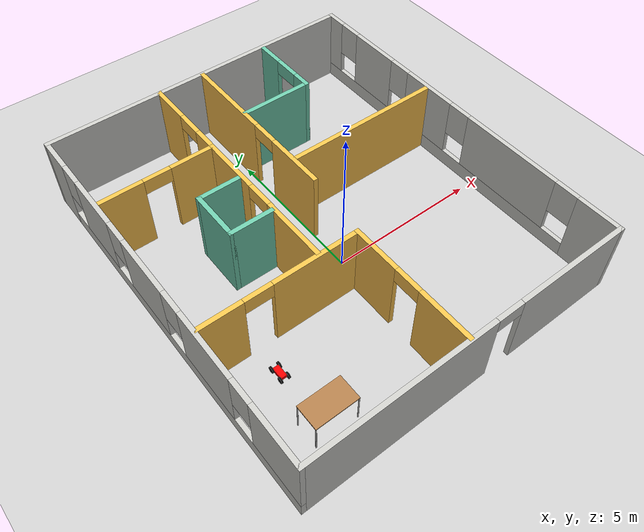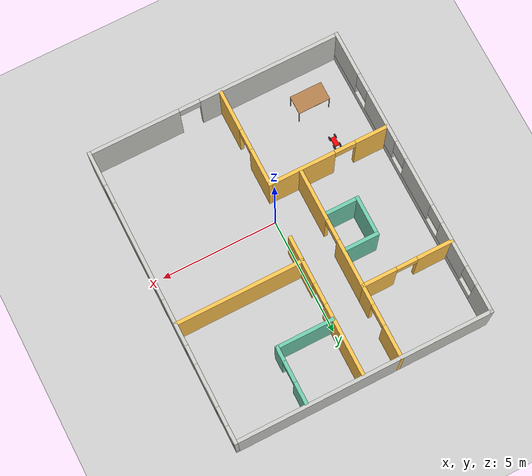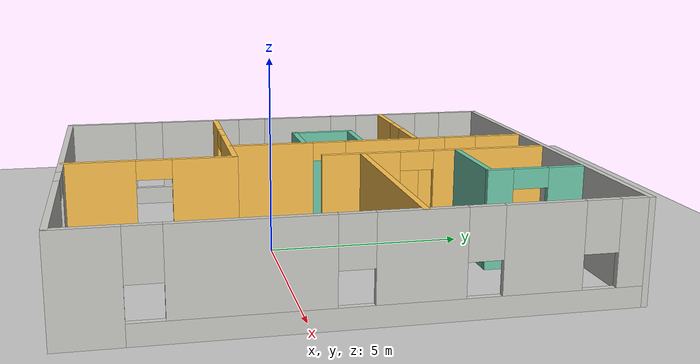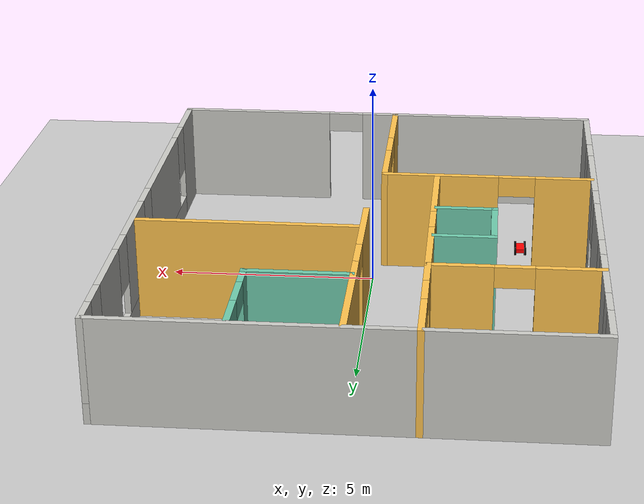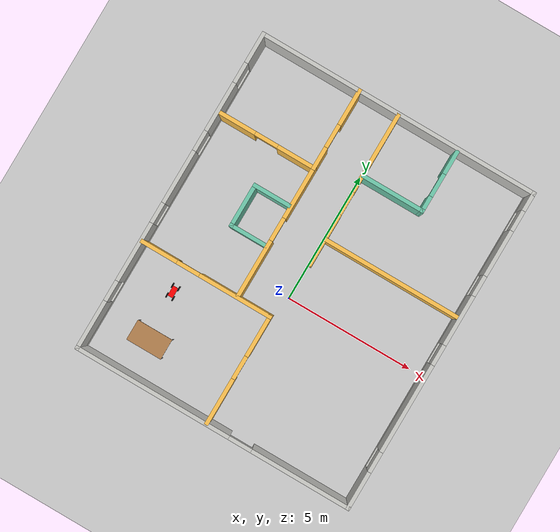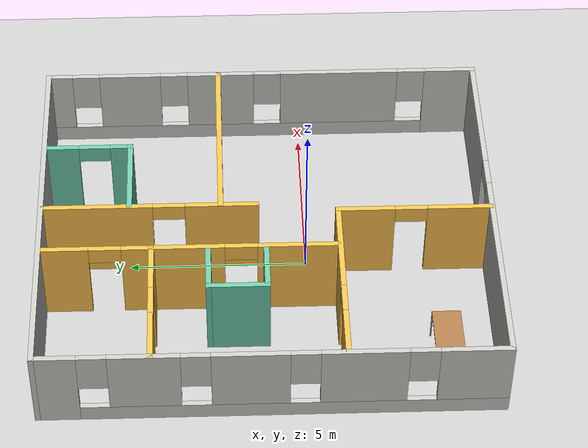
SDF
<sdf version="1.6">
 <world name="default">
  <model name="ground_plane">
   <static>1</static>
   <link name="link">
    <collision name="collision">
     <geometry><plane><normal>0 0 1</normal><size>100 100</size></plane></geometry>
     <surface><friction><ode><mu>100</mu><mu2>50</mu2></ode></friction></surface>
    </collision>
    <visual name="visual">
     <cast_shadows>0</cast_shadows>
     <geometry><plane><normal>0 0 1</normal><size>100 100</size></plane></geometry>
     <material>
      <script><uri>file://media/materials/scripts/gazebo.material</uri><name>Gazebo/Grey</name></script>
     </material>
    </visual>
   </link>
  </model>
  <model name="my_building">
   <pose>0.030865 1.12129 0 0 -0 0</pose>
   <link name="Wall_16">
    <pose>0 -6.30017 0 0 -0 0</pose>
    <visual name="Wall_16_Visual_0">
     <pose>-2.42617 0 1.25 0 -0 0</pose>
     <geometry><box><size>6.14766 0.15 2.5</size></box></geometry>
     <material>
      <script><uri>file://media/materials/scripts/gazebo.material</uri><name>Gazebo/CeilingTiled</name></script>
      <ambient>1 1 1 1</ambient>
     </material>
    </visual>
    <collision name="Wall_16_Collision_0">
     <geometry><box><size>6.14766 0.15 2.5</size></box></geometry>
     <pose>-2.42617 0 1.25 0 -0 0</pose>
    </collision>
    <visual name="Wall_16_Visual_1">
     <pose>3.52383 0 1.25 0 -0 0</pose>
     <geometry><box><size>3.95234 0.15 2.5</size></box></geometry>
     <material>
      <script><uri>file://media/materials/scripts/gazebo.material</uri><name>Gazebo/CeilingTiled</name></script>
      <ambient>1 1 1 1</ambient>
     </material>
    </visual>
    <collision name="Wall_16_Collision_1">
     <geometry><box><size>3.95234 0.15 2.5</size></box></geometry>
     <pose>3.52383 0 1.25 0 -0 0</pose>
    </collision>
    <visual name="Wall_16_Visual_2">
     <pose>1.09766 0 2.25 0 -0 0</pose>
     <geometry><box><size>0.9 0.15 0.5</size></box></geometry>
     <material>
      <script><uri>file://media/materials/scripts/gazebo.material</uri><name>Gazebo/CeilingTiled</name></script>
      <ambient>1 1 1 1</ambient>
     </material>
    </visual>
    <collision name="Wall_16_Collision_2">
     <geometry><box><size>0.9 0.15 0.5</size></box></geometry>
     <pose>1.09766 0 2.25 0 -0 0</pose>
    </collision>
   </link>
   <link name="Wall_17">
    <pose>5.425 -0.000173 0 0 -0 1.5708</pose>
    <visual name="Wall_17_Visual_0">
     <pose>-5.62049 0 1.25 0 -0 0</pose>
     <geometry><box><size>1.50902 0.15 2.5</size></box></geometry>
     <material>
      <script><uri>file://media/materials/scripts/gazebo.material</uri><name>Gazebo/CeilingTiled</name></script>
      <ambient>1 1 1 1</ambient>
     </material>
    </visual>
    <collision name="Wall_17_Collision_0">
     <geometry><box><size>1.50902 0.15 2.5</size></box></geometry>
     <pose>-5.62049 0 1.25 0 -0 0</pose>
    </collision>
    <visual name="Wall_17_Visual_1">
     <pose>0.754508 0 0.25 0 -0 0</pose>
     <geometry><box><size>11.241 0.15 0.5</size></box></geometry>
     <material>
      <script><uri>file://media/materials/scripts/gazebo.material</uri><name>Gazebo/CeilingTiled</name></script>
      <ambient>1 1 1 1</ambient>
     </material>
    </visual>
    <collision name="Wall_17_Collision_1">
     <geometry><box><size>11.241 0.15 0.5</size></box></geometry>
     <pose>0.754508 0 0.25 0 -0 0</pose>
    </collision>
    <visual name="Wall_17_Visual_2">
     <pose>-2.32184 0 1.5 0 -0 0</pose>
     <geometry><box><size>3.48829 0.15 2</size></box></geometry>
     <material>
      <script><uri>file://media/materials/scripts/gazebo.material</uri><name>Gazebo/CeilingTiled</name></script>
      <ambient>1 1 1 1</ambient>
     </material>
    </visual>
    <collision name="Wall_17_Collision_2">
     <geometry><box><size>3.48829 0.15 2</size></box></geometry>
     <pose>-2.32184 0 1.5 0 -0 0</pose>
    </collision>
    <visual name="Wall_17_Visual_3">
     <pose>1.20791 0 1.5 0 -0 0</pose>
     <geometry><box><size>1.97121 0.15 2</size></box></geometry>
     <material>
      <script><uri>file://media/materials/scripts/gazebo.material</uri><name>Gazebo/CeilingTiled</name></script>
      <ambient>1 1 1 1</ambient>
     </material>
    </visual>
    <collision name="Wall_17_Collision_3">
     <geometry><box><size>1.97121 0.15 2</size></box></geometry>
     <pose>1.20791 0 1.5 0 -0 0</pose>
    </collision>
    <visual name="Wall_17_Visual_4">
     <pose>3.89821 0 1.5 0 -0 0</pose>
     <geometry><box><size>1.80939 0.15 2</size></box></geometry>
     <material>
      <script><uri>file://media/materials/scripts/gazebo.material</uri><name>Gazebo/CeilingTiled</name></script>
      <ambient>1 1 1 1</ambient>
     </material>
    </visual>
    <collision name="Wall_17_Collision_4">
     <geometry><box><size>1.80939 0.15 2</size></box></geometry>
     <pose>3.89821 0 1.5 0 -0 0</pose>
    </collision>
    <visual name="Wall_17_Visual_5">
     <pose>5.98895 0 1.5 0 -0 0</pose>
     <geometry><box><size>0.772101 0.15 2</size></box></geometry>
     <material>
      <script><uri>file://media/materials/scripts/gazebo.material</uri><name>Gazebo/CeilingTiled</name></script>
      <ambient>1 1 1 1</ambient>
     </material>
    </visual>
    <collision name="Wall_17_Collision_5">
     <geometry><box><size>0.772101 0.15 2</size></box></geometry>
     <pose>5.98895 0 1.5 0 -0 0</pose>
    </collision>
    <visual name="Wall_17_Visual_6">
     <pose>-4.46598 0 1.9 0 -0 0</pose>
     <geometry><box><size>0.8 0.15 1.2</size></box></geometry>
     <material>
      <script><uri>file://media/materials/scripts/gazebo.material</uri><name>Gazebo/CeilingTiled</name></script>
      <ambient>1 1 1 1</ambient>
     </material>
    </visual>
    <collision name="Wall_17_Collision_6">
     <geometry><box><size>0.8 0.15 1.2</size></box></geometry>
     <pose>-4.46598 0 1.9 0 -0 0</pose>
    </collision>
    <visual name="Wall_17_Visual_7">
     <pose>-0.177693 0 1.9 0 -0 0</pose>
     <geometry><box><size>0.8 0.15 1.2</size></box></geometry>
     <material>
      <script><uri>file://media/materials/scripts/gazebo.material</uri><name>Gazebo/CeilingTiled</name></script>
      <ambient>1 1 1 1</ambient>
     </material>
    </visual>
    <collision name="Wall_17_Collision_7">
     <geometry><box><size>0.8 0.15 1.2</size></box></geometry>
     <pose>-0.177693 0 1.9 0 -0 0</pose>
    </collision>
    <visual name="Wall_17_Visual_8">
     <pose>2.59351 0 1.9 0 -0 0</pose>
     <geometry><box><size>0.8 0.15 1.2</size></box></geometry>
     <material>
      <script><uri>file://media/materials/scripts/gazebo.material</uri><name>Gazebo/CeilingTiled</name></script>
      <ambient>1 1 1 1</ambient>
     </material>
    </visual>
    <collision name="Wall_17_Collision_8">
     <geometry><box><size>0.8 0.15 1.2</size></box></geometry>
     <pose>2.59351 0 1.9 0 -0 0</pose>
    </collision>
    <visual name="Wall_17_Visual_9">
     <pose>5.2029 0 1.9 0 -0 0</pose>
     <geometry><box><size>0.8 0.15 1.2</size></box></geometry>
     <material>
      <script><uri>file://media/materials/scripts/gazebo.material</uri><name>Gazebo/CeilingTiled</name></script>
      <ambient>1 1 1 1</ambient>
     </material>
    </visual>
    <collision name="Wall_17_Collision_9">
     <geometry><box><size>0.8 0.15 1.2</size></box></geometry>
     <pose>5.2029 0 1.9 0 -0 0</pose>
    </collision>
   </link>
   <link name="Wall_19">
    <collision name="Wall_19_Collision">
     <geometry><box><size>11 0.15 2.5</size></box></geometry>
     <pose>0 0 1.25 0 -0 0</pose>
    </collision>
    <visual name="Wall_19_Visual">
     <pose>0 0 1.25 0 -0 0</pose>
     <geometry><box><size>11 0.15 2.5</size></box></geometry>
     <material>
      <script><uri>file://media/materials/scripts/gazebo.material</uri><name>Gazebo/CeilingTiled</name></script>
      <ambient>1 1 1 1</ambient>
     </material>
    </visual>
    <pose>0 6.29983 0 0 -0 3.14159</pose>
   </link>
   <link name="Wall_20">
    <pose>-5.425 -0.000173 0 0 0 -1.5708</pose>
    <visual name="Wall_20_Visual_0">
     <pose>-5.75633 0 1.25 0 -0 0</pose>
     <geometry><box><size>1.23734 0.15 2.5</size></box></geometry>
     <material>
      <script><uri>file://media/materials/scripts/gazebo.material</uri><name>Gazebo/CeilingTiled</name></script>
      <ambient>1 1 1 1</ambient>
     </material>
    </visual>
    <collision name="Wall_20_Collision_0">
     <geometry><box><size>1.23734 0.15 2.5</size></box></geometry>
     <pose>-5.75633 0 1.25 0 -0 0</pose>
    </collision>
    <visual name="Wall_20_Visual_1">
     <pose>0.61867 0 0.25 0 -0 0</pose>
     <geometry><box><size>11.5127 0.15 0.5</size></box></geometry>
     <material>
      <script><uri>file://media/materials/scripts/gazebo.material</uri><name>Gazebo/CeilingTiled</name></script>
      <ambient>1 1 1 1</ambient>
     </material>
    </visual>
    <collision name="Wall_20_Collision_1">
     <geometry><box><size>11.5127 0.15 0.5</size></box></geometry>
     <pose>0.61867 0 0.25 0 -0 0</pose>
    </collision>
    <visual name="Wall_20_Visual_2">
     <pose>-3.37228 0 1.5 0 -0 0</pose>
     <geometry><box><size>1.93075 0.15 2</size></box></geometry>
     <material>
      <script><uri>file://media/materials/scripts/gazebo.material</uri><name>Gazebo/CeilingTiled</name></script>
      <ambient>1 1 1 1</ambient>
     </material>
    </visual>
    <collision name="Wall_20_Collision_2">
     <geometry><box><size>1.93075 0.15 2</size></box></geometry>
     <pose>-3.37228 0 1.5 0 -0 0</pose>
    </collision>
    <visual name="Wall_20_Visual_3">
     <pose>-0.560621 0 1.5 0 -0 0</pose>
     <geometry><box><size>2.09257 0.15 2</size></box></geometry>
     <material>
      <script><uri>file://media/materials/scripts/gazebo.material</uri><name>Gazebo/CeilingTiled</name></script>
      <ambient>1 1 1 1</ambient>
     </material>
    </visual>
    <collision name="Wall_20_Collision_3">
     <geometry><box><size>2.09257 0.15 2</size></box></geometry>
     <pose>-0.560621 0 1.5 0 -0 0</pose>
    </collision>
    <visual name="Wall_20_Visual_4">
     <pose>2.45016 0 1.5 0 -0 0</pose>
     <geometry><box><size>2.32899 0.15 2</size></box></geometry>
     <material>
      <script><uri>file://media/materials/scripts/gazebo.material</uri><name>Gazebo/CeilingTiled</name></script>
      <ambient>1 1 1 1</ambient>
     </material>
    </visual>
    <collision name="Wall_20_Collision_4">
     <geometry><box><size>2.32899 0.15 2</size></box></geometry>
     <pose>2.45016 0 1.5 0 -0 0</pose>
    </collision>
    <visual name="Wall_20_Visual_5">
     <pose>5.39483 0 1.5 0 -0 0</pose>
     <geometry><box><size>1.96034 0.15 2</size></box></geometry>
     <material>
      <script><uri>file://media/materials/scripts/gazebo.material</uri><name>Gazebo/CeilingTiled</name></script>
      <ambient>1 1 1 1</ambient>
     </material>
    </visual>
    <collision name="Wall_20_Collision_5">
     <geometry><box><size>1.96034 0.15 2</size></box></geometry>
     <pose>5.39483 0 1.5 0 -0 0</pose>
    </collision>
    <visual name="Wall_20_Visual_6">
     <pose>-4.73766 0 1.9 0 -0 0</pose>
     <geometry><box><size>0.8 0.15 1.2</size></box></geometry>
     <material>
      <script><uri>file://media/materials/scripts/gazebo.material</uri><name>Gazebo/CeilingTiled</name></script>
      <ambient>1 1 1 1</ambient>
     </material>
    </visual>
    <collision name="Wall_20_Collision_6">
     <geometry><box><size>0.8 0.15 1.2</size></box></geometry>
     <pose>-4.73766 0 1.9 0 -0 0</pose>
    </collision>
    <visual name="Wall_20_Visual_7">
     <pose>-2.00691 0 1.9 0 -0 0</pose>
     <geometry><box><size>0.8 0.15 1.2</size></box></geometry>
     <material>
      <script><uri>file://media/materials/scripts/gazebo.material</uri><name>Gazebo/CeilingTiled</name></script>
      <ambient>1 1 1 1</ambient>
     </material>
    </visual>
    <collision name="Wall_20_Collision_7">
     <geometry><box><size>0.8 0.15 1.2</size></box></geometry>
     <pose>-2.00691 0 1.9 0 -0 0</pose>
    </collision>
    <visual name="Wall_20_Visual_8">
     <pose>0.885666 0 1.9 0 -0 0</pose>
     <geometry><box><size>0.8 0.15 1.2</size></box></geometry>
     <material>
      <script><uri>file://media/materials/scripts/gazebo.material</uri><name>Gazebo/CeilingTiled</name></script>
      <ambient>1 1 1 1</ambient>
     </material>
    </visual>
    <collision name="Wall_20_Collision_8">
     <geometry><box><size>0.8 0.15 1.2</size></box></geometry>
     <pose>0.885666 0 1.9 0 -0 0</pose>
    </collision>
    <visual name="Wall_20_Visual_9">
     <pose>4.01466 0 1.9 0 -0 0</pose>
     <geometry><box><size>0.8 0.15 1.2</size></box></geometry>
     <material>
      <script><uri>file://media/materials/scripts/gazebo.material</uri><name>Gazebo/CeilingTiled</name></script>
      <ambient>1 1 1 1</ambient>
     </material>
    </visual>
    <collision name="Wall_20_Collision_9">
     <geometry><box><size>0.8 0.15 1.2</size></box></geometry>
     <pose>4.01466 0 1.9 0 -0 0</pose>
    </collision>
   </link>
   <link name="Wall_22">
    <pose>-2.805 -1.99837 0 0 -0 0</pose>
    <visual name="Wall_22_Visual_0">
     <pose>-1.90225 0 1.25 0 -0 0</pose>
     <geometry><box><size>1.4455 0.15 2.5</size></box></geometry>
     <material>
      <script><uri>file://media/materials/scripts/gazebo.material</uri><name>Gazebo/Grey</name></script>
      <ambient>1 0.764706 0.305882 1</ambient>
     </material>
    </visual>
    <collision name="Wall_22_Collision_0">
     <geometry><box><size>1.4455 0.15 2.5</size></box></geometry>
     <pose>-1.90225 0 1.25 0 -0 0</pose>
    </collision>
    <visual name="Wall_22_Visual_1">
     <pose>1.17275 0 1.25 0 -0 0</pose>
     <geometry><box><size>2.9045 0.15 2.5</size></box></geometry>
     <material>
      <script><uri>file://media/materials/scripts/gazebo.material</uri><name>Gazebo/Grey</name></script>
      <ambient>1 0.764706 0.305882 1</ambient>
     </material>
    </visual>
    <collision name="Wall_22_Collision_1">
     <geometry><box><size>2.9045 0.15 2.5</size></box></geometry>
     <pose>1.17275 0 1.25 0 -0 0</pose>
    </collision>
    <visual name="Wall_22_Visual_2">
     <pose>-0.729499 0 2.25 0 -0 0</pose>
     <geometry><box><size>0.9 0.15 0.5</size></box></geometry>
     <material>
      <script><uri>file://media/materials/scripts/gazebo.material</uri><name>Gazebo/Grey</name></script>
      <ambient>1 0.764706 0.305882 1</ambient>
     </material>
    </visual>
    <collision name="Wall_22_Collision_2">
     <geometry><box><size>0.9 0.15 0.5</size></box></geometry>
     <pose>-0.729499 0 2.25 0 -0 0</pose>
    </collision>
   </link>
   <link name="Wall_23">
    <pose>-0.255 -4.12337 0 0 0 -1.5708</pose>
    <visual name="Wall_23_Visual_0">
     <pose>-1.366 0 1.25 0 -0 0</pose>
     <geometry><box><size>1.66801 0.15 2.5</size></box></geometry>
     <material>
      <script><uri>file://media/materials/scripts/gazebo.material</uri><name>Gazebo/Grey</name></script>
      <ambient>1 0.764706 0.305882 1</ambient>
     </material>
    </visual>
    <collision name="Wall_23_Collision_0">
     <geometry><box><size>1.66801 0.15 2.5</size></box></geometry>
     <pose>-1.366 0 1.25 0 -0 0</pose>
    </collision>
    <visual name="Wall_23_Visual_1">
     <pose>1.284 0 1.25 0 -0 0</pose>
     <geometry><box><size>1.83199 0.15 2.5</size></box></geometry>
     <material>
      <script><uri>file://media/materials/scripts/gazebo.material</uri><name>Gazebo/Grey</name></script>
      <ambient>1 0.764706 0.305882 1</ambient>
     </material>
    </visual>
    <collision name="Wall_23_Collision_1">
     <geometry><box><size>1.83199 0.15 2.5</size></box></geometry>
     <pose>1.284 0 1.25 0 -0 0</pose>
    </collision>
    <visual name="Wall_23_Visual_2">
     <pose>-0.081993 0 2.25 0 -0 0</pose>
     <geometry><box><size>0.9 0.15 0.5</size></box></geometry>
     <material>
      <script><uri>file://media/materials/scripts/gazebo.material</uri><name>Gazebo/Grey</name></script>
      <ambient>1 0.764706 0.305882 1</ambient>
     </material>
    </visual>
    <collision name="Wall_23_Collision_2">
     <geometry><box><size>0.9 0.15 0.5</size></box></geometry>
     <pose>-0.081993 0 2.25 0 -0 0</pose>
    </collision>
   </link>
   <link name="Wall_25">
    <pose>-3.49068 3.20017 0 0 -0 0</pose>
    <visual name="Wall_25_Visual_0">
     <pose>-1.21338 0 1.25 0 -0 0</pose>
     <geometry><box><size>1.57325 0.15 2.5</size></box></geometry>
     <material>
      <script><uri>file://media/materials/scripts/gazebo.material</uri><name>Gazebo/Grey</name></script>
      <ambient>1 0.764706 0.305882 1</ambient>
     </material>
    </visual>
    <collision name="Wall_25_Collision_0">
     <geometry><box><size>1.57325 0.15 2.5</size></box></geometry>
     <pose>-1.21338 0 1.25 0 -0 0</pose>
    </collision>
    <visual name="Wall_25_Visual_1">
     <pose>1.23662 0 1.25 0 -0 0</pose>
     <geometry><box><size>1.52675 0.15 2.5</size></box></geometry>
     <material>
      <script><uri>file://media/materials/scripts/gazebo.material</uri><name>Gazebo/Grey</name></script>
      <ambient>1 0.764706 0.305882 1</ambient>
     </material>
    </visual>
    <collision name="Wall_25_Collision_1">
     <geometry><box><size>1.52675 0.15 2.5</size></box></geometry>
     <pose>1.23662 0 1.25 0 -0 0</pose>
    </collision>
    <visual name="Wall_25_Visual_2">
     <pose>0.023247 0 2.25 0 -0 0</pose>
     <geometry><box><size>0.9 0.15 0.5</size></box></geometry>
     <material>
      <script><uri>file://media/materials/scripts/gazebo.material</uri><name>Gazebo/Grey</name></script>
      <ambient>1 0.764706 0.305882 1</ambient>
     </material>
    </visual>
    <collision name="Wall_25_Collision_2">
     <geometry><box><size>0.9 0.15 0.5</size></box></geometry>
     <pose>0.023247 0 2.25 0 -0 0</pose>
    </collision>
   </link>
   <link name="Wall_26">
    <pose>-1.56568 0.650174 0 0 0 -1.5708</pose>
    <visual name="Wall_26_Visual_0">
     <pose>-1.57861 0 1.25 0 -0 0</pose>
     <geometry><box><size>2.09279 0.15 2.5</size></box></geometry>
     <material>
      <script><uri>file://media/materials/scripts/gazebo.material</uri><name>Gazebo/Grey</name></script>
      <ambient>1 0.764706 0.305882 1</ambient>
     </material>
    </visual>
    <collision name="Wall_26_Collision_0">
     <geometry><box><size>2.09279 0.15 2.5</size></box></geometry>
     <pose>-1.57861 0 1.25 0 -0 0</pose>
    </collision>
    <visual name="Wall_26_Visual_1">
     <pose>1.49639 0 1.25 0 -0 0</pose>
     <geometry><box><size>2.25721 0.15 2.5</size></box></geometry>
     <material>
      <script><uri>file://media/materials/scripts/gazebo.material</uri><name>Gazebo/Grey</name></script>
      <ambient>1 0.764706 0.305882 1</ambient>
     </material>
    </visual>
    <collision name="Wall_26_Collision_1">
     <geometry><box><size>2.25721 0.15 2.5</size></box></geometry>
     <pose>1.49639 0 1.25 0 -0 0</pose>
    </collision>
    <visual name="Wall_26_Visual_2">
     <pose>-0.08221 0 2.25 0 -0 0</pose>
     <geometry><box><size>0.9 0.15 0.5</size></box></geometry>
     <material>
      <script><uri>file://media/materials/scripts/gazebo.material</uri><name>Gazebo/Grey</name></script>
      <ambient>1 0.764706 0.305882 1</ambient>
     </material>
    </visual>
    <collision name="Wall_26_Collision_2">
     <geometry><box><size>0.9 0.15 0.5</size></box></geometry>
     <pose>-0.08221 0 2.25 0 -0 0</pose>
    </collision>
   </link>
   <link name="Wall_28">
    <pose>-1.56568 4.75017 0 0 -0 1.5708</pose>
    <visual name="Wall_28_Visual_0">
     <pose>-1.17532 0 1.25 0 -0 0</pose>
     <geometry><box><size>0.89935 0.15 2.5</size></box></geometry>
     <material>
      <script><uri>file://media/materials/scripts/gazebo.material</uri><name>Gazebo/Grey</name></script>
      <ambient>1 0.764706 0.305882 1</ambient>
     </material>
    </visual>
    <collision name="Wall_28_Collision_0">
     <geometry><box><size>0.89935 0.15 2.5</size></box></geometry>
     <pose>-1.17532 0 1.25 0 -0 0</pose>
    </collision>
    <visual name="Wall_28_Visual_1">
     <pose>0.899675 0 1.25 0 -0 0</pose>
     <geometry><box><size>1.45065 0.15 2.5</size></box></geometry>
     <material>
      <script><uri>file://media/materials/scripts/gazebo.material</uri><name>Gazebo/Grey</name></script>
      <ambient>1 0.764706 0.305882 1</ambient>
     </material>
    </visual>
    <collision name="Wall_28_Collision_1">
     <geometry><box><size>1.45065 0.15 2.5</size></box></geometry>
     <pose>0.899675 0 1.25 0 -0 0</pose>
    </collision>
    <visual name="Wall_28_Visual_2">
     <pose>-0.27565 0 2.25 0 -0 0</pose>
     <geometry><box><size>0.9 0.15 0.5</size></box></geometry>
     <material>
      <script><uri>file://media/materials/scripts/gazebo.material</uri><name>Gazebo/Grey</name></script>
      <ambient>1 0.764706 0.305882 1</ambient>
     </material>
    </visual>
    <collision name="Wall_28_Collision_2">
     <geometry><box><size>0.9 0.15 0.5</size></box></geometry>
     <pose>-0.27565 0 2.25 0 -0 0</pose>
    </collision>
   </link>
   <link name="Wall_30">
    <collision name="Wall_30_Collision">
     <geometry><box><size>1.5 0.15 2.5</size></box></geometry>
     <pose>0 0 1.25 0 -0 0</pose>
    </collision>
    <visual name="Wall_30_Visual">
     <pose>0 0 1.25 0 -0 0</pose>
     <geometry><box><size>1.5 0.15 2.5</size></box></geometry>
     <material>
      <script><uri>file://media/materials/scripts/gazebo.material</uri><name>Gazebo/Grey</name></script>
      <ambient>0.435294 0.796078 0.67451 1</ambient>
     </material>
    </visual>
    <pose>-2.32831 1.64264 0 0 -0 3.14159</pose>
   </link>
   <link name="Wall_31">
    <collision name="Wall_31_Collision">
     <geometry><box><size>1.75 0.15 2.5</size></box></geometry>
     <pose>0 0 1.25 0 -0 0</pose>
    </collision>
    <visual name="Wall_31_Visual">
     <pose>0 0 1.25 0 -0 0</pose>
     <geometry><box><size>1.75 0.15 2.5</size></box></geometry>
     <material>
      <script><uri>file://media/materials/scripts/gazebo.material</uri><name>Gazebo/Grey</name></script>
      <ambient>0.435294 0.796078 0.67451 1</ambient>
     </material>
    </visual>
    <pose>-3.00331 0.842635 0 0 0 -1.5708</pose>
   </link>
   <link name="Wall_32">
    <collision name="Wall_32_Collision">
     <geometry><box><size>1.5 0.15 2.5</size></box></geometry>
     <pose>0 0 1.25 0 -0 0</pose>
    </collision>
    <visual name="Wall_32_Visual">
     <pose>0 0 1.25 0 -0 0</pose>
     <geometry><box><size>1.5 0.15 2.5</size></box></geometry>
     <material>
      <script><uri>file://media/materials/scripts/gazebo.material</uri><name>Gazebo/Grey</name></script>
      <ambient>0.435294 0.796078 0.67451 1</ambient>
     </material>
    </visual>
    <pose>-2.32831 0.042635 0 0 -0 0</pose>
   </link>
   <link name="Wall_37">
    <collision name="Wall_37_Collision">
     <geometry><box><size>5.5 0.15 2.5</size></box></geometry>
     <pose>0 0 1.25 0 -0 0</pose>
    </collision>
    <visual name="Wall_37_Visual">
     <pose>0 0 1.25 0 -0 0</pose>
     <geometry><box><size>5.5 0.15 2.5</size></box></geometry>
     <material>
      <script><uri>file://media/materials/scripts/gazebo.material</uri><name>Gazebo/Grey</name></script>
      <ambient>1 0.764706 0.305882 1</ambient>
     </material>
    </visual>
    <pose>2.72082 1.27853 0 0 -0 0</pose>
   </link>
   <link name="Wall_39">
    <collision name="Wall_39_Collision">
     <geometry><box><size>2.5 0.15 2.5</size></box></geometry>
     <pose>0 0 1.25 0 -0 0</pose>
    </collision>
    <visual name="Wall_39_Visual">
     <pose>0 0 1.25 0 -0 0</pose>
     <geometry><box><size>2.5 0.15 2.5</size></box></geometry>
     <material>
      <script><uri>file://media/materials/scripts/gazebo.material</uri><name>Gazebo/Grey</name></script>
      <ambient>0.435294 0.796078 0.67451 1</ambient>
     </material>
    </visual>
    <pose>1.24105 3.82724 0 0 -0 0</pose>
   </link>
   <link name="Wall_40">
    <pose>2.41605 5.00224 0 0 -0 1.5708</pose>
    <visual name="Wall_40_Visual_0">
     <pose>-0.921692 0 1.25 0 -0 0</pose>
     <geometry><box><size>0.656617 0.15 2.5</size></box></geometry>
     <material>
      <script><uri>file://media/materials/scripts/gazebo.material</uri><name>Gazebo/Grey</name></script>
      <ambient>0.435294 0.796078 0.67451 1</ambient>
     </material>
    </visual>
    <collision name="Wall_40_Collision_0">
     <geometry><box><size>0.656617 0.15 2.5</size></box></geometry>
     <pose>-0.921692 0 1.25 0 -0 0</pose>
    </collision>
    <visual name="Wall_40_Visual_1">
     <pose>0.778308 0 1.25 0 -0 0</pose>
     <geometry><box><size>0.943383 0.15 2.5</size></box></geometry>
     <material>
      <script><uri>file://media/materials/scripts/gazebo.material</uri><name>Gazebo/Grey</name></script>
      <ambient>0.435294 0.796078 0.67451 1</ambient>
     </material>
    </visual>
    <collision name="Wall_40_Collision_1">
     <geometry><box><size>0.943383 0.15 2.5</size></box></geometry>
     <pose>0.778308 0 1.25 0 -0 0</pose>
    </collision>
    <visual name="Wall_40_Visual_2">
     <pose>-0.143383 0 2.25 0 -0 0</pose>
     <geometry><box><size>0.9 0.15 0.5</size></box></geometry>
     <material>
      <script><uri>file://media/materials/scripts/gazebo.material</uri><name>Gazebo/Grey</name></script>
      <ambient>0.435294 0.796078 0.67451 1</ambient>
     </material>
    </visual>
    <collision name="Wall_40_Collision_2">
     <geometry><box><size>0.9 0.15 0.5</size></box></geometry>
     <pose>-0.143383 0 2.25 0 -0 0</pose>
    </collision>
   </link>
   <link name="Wall_42">
    <pose>0.021649 3.25468 0 0 -0 1.5708</pose>
    <visual name="Wall_42_Visual_0">
     <pose>-2.01275 0 1.25 0 -0 0</pose>
     <geometry><box><size>2.0745 0.15 2.5</size></box></geometry>
     <material>
      <script><uri>file://media/materials/scripts/gazebo.material</uri><name>Gazebo/Grey</name></script>
      <ambient>1 0.764706 0.305882 1</ambient>
     </material>
    </visual>
    <collision name="Wall_42_Collision_0">
     <geometry><box><size>2.0745 0.15 2.5</size></box></geometry>
     <pose>-2.01275 0 1.25 0 -0 0</pose>
    </collision>
    <visual name="Wall_42_Visual_1">
     <pose>1.48725 0 1.25 0 -0 0</pose>
     <geometry><box><size>3.1255 0.15 2.5</size></box></geometry>
     <material>
      <script><uri>file://media/materials/scripts/gazebo.material</uri><name>Gazebo/Grey</name></script>
      <ambient>1 0.764706 0.305882 1</ambient>
     </material>
    </visual>
    <collision name="Wall_42_Collision_1">
     <geometry><box><size>3.1255 0.15 2.5</size></box></geometry>
     <pose>1.48725 0 1.25 0 -0 0</pose>
    </collision>
    <visual name="Wall_42_Visual_2">
     <pose>-0.5255 0 2.25 0 -0 0</pose>
     <geometry><box><size>0.9 0.15 0.5</size></box></geometry>
     <material>
      <script><uri>file://media/materials/scripts/gazebo.material</uri><name>Gazebo/Grey</name></script>
      <ambient>1 0.764706 0.305882 1</ambient>
     </material>
    </visual>
    <collision name="Wall_42_Collision_2">
     <geometry><box><size>0.9 0.15 0.5</size></box></geometry>
     <pose>-0.5255 0 2.25 0 -0 0</pose>
    </collision>
   </link>
   <static>1</static>
  </model>
  <model name="table">
   <static>0</static>
   <link name="link">
    <collision name="surface">
     <pose>0 0 1 0 -0 0</pose>
     <geometry><box><size>1.5 0.8 0.03</size></box></geometry>
     <surface><friction><ode><mu>0.6</mu><mu2>0.6</mu2></ode></friction></surface>
    </collision>
    <visual name="visual1">
     <pose>0 0 1 0 -0 0</pose>
     <geometry><box><size>1.4 0.8 0.04</size></box></geometry>
     <material>
      <script><uri>file://media/materials/scripts/gazebo.material</uri><name>Gazebo/Wood</name></script>
     </material>
    </visual>
    <collision name="front_left_leg">
     <pose>0.68 0.38 0.5 0 -0 0</pose>
     <geometry><cylinder><radius>0.02</radius><length>1</length></cylinder></geometry>
    </collision>
    <visual name="front_left_leg">
     <pose>0.68 0.38 0.5 0 -0 0</pose>
     <geometry><cylinder><radius>0.02</radius><length>1</length></cylinder></geometry>
     <material>
      <script><uri>file://media/materials/scripts/gazebo.material</uri><name>Gazebo/Grey</name></script>
     </material>
    </visual>
    <collision name="front_right_leg">
     <pose>0.68 -0.38 0.5 0 -0 0</pose>
     <geometry><cylinder><radius>0.02</radius><length>1</length></cylinder></geometry>
    </collision>
    <visual name="front_right_leg">
     <pose>0.68 -0.38 0.5 0 -0 0</pose>
     <geometry><cylinder><radius>0.02</radius><length>1</length></cylinder></geometry>
     <material>
      <script><uri>file://media/materials/scripts/gazebo.material</uri><name>Gazebo/Grey</name></script>
     </material>
    </visual>
    <collision name="back_right_leg">
     <pose>-0.68 -0.38 0.5 0 -0 0</pose>
     <geometry><cylinder><radius>0.02</radius><length>1</length></cylinder></geometry>
    </collision>
    <visual name="back_right_leg">
     <pose>-0.68 -0.38 0.5 0 -0 0</pose>
     <geometry><cylinder><radius>0.02</radius><length>1</length></cylinder></geometry>
     <material>
      <script><uri>file://media/materials/scripts/gazebo.material</uri><name>Gazebo/Grey</name></script>
     </material>
    </visual>
    <collision name="back_left_leg">
     <pose>-0.68 0.38 0.5 0 -0 0</pose>
     <geometry><cylinder><radius>0.02</radius><length>1</length></cylinder></geometry>
    </collision>
    <visual name="back_left_leg">
     <pose>-0.68 0.38 0.5 0 -0 0</pose>
     <geometry><cylinder><radius>0.02</radius><length>1</length></cylinder></geometry>
     <material>
      <script><uri>file://media/materials/scripts/gazebo.material</uri><name>Gazebo/Grey</name></script>
     </material>
    </visual>
    <inertial>
     <inertia><ixx>1</ixx><ixy>0</ixy><ixz>0</ixz><iyy>1</iyy><iyz>0</iyz><izz>1</izz></inertia>
     <mass>1</mass>
    </inertial>
   </link>
   <pose>-3.48639 -3.75617 -1e-06 1e-06 -0 0</pose>
  </model>
  <model name="my_robot_clone">
   <link name="link_0">
    <inertial>
     <mass>1</mass>
     <inertia>
      <ixx>0.166667</ixx>
      <ixy>0</ixy>
      <ixz>0</ixz>
      <iyy>0.166667</iyy>
      <iyz>0</iyz>
      <izz>0.166667</izz>
     </inertia>
    </inertial>
    <visual name="visual">
     <geometry><box><size>0.4 0.2 0.1</size></box></geometry>
     <material>
      <ambient>1 0 0 1</ambient>
      <diffuse>1 0 0 1</diffuse>
      <specular>0.1 0.1 0.1 1</specular>
      <emissive>0 0 0 0</emissive>
     </material>
    </visual>
    <collision name="collision">
     <geometry><box><size>0.4 0.2 0.1</size></box></geometry>
     <surface>
      <friction>
       <ode><mu>1</mu><mu2>1</mu2><fdir1>0 0 0</fdir1><slip1>0</slip1><slip2>0</slip2></ode>
       <torsional>
        <coefficient>1</coefficient>
        <patch_radius>0</patch_radius>
        <surface_radius>0</surface_radius>
        <use_patch_radius>1</use_patch_radius>
        <ode><slip>0</slip></ode>
       </torsional>
      </friction>
      <bounce><restitution_coefficient>0</restitution_coefficient><threshold>1e+06</threshold></bounce>
      <contact>
       <collide_without_contact>0</collide_without_contact>
       <collide_without_contact_bitmask>1</collide_without_contact_bitmask>
       <collide_bitmask>1</collide_bitmask>
       <ode>
        <soft_cfm>0</soft_cfm>
        <soft_erp>0.2</soft_erp>
        <kp>1e+13</kp>
        <kd>1</kd>
        <max_vel>0.01</max_vel>
        <min_depth>0</min_depth>
       </ode>
       <bullet>
        <split_impulse>1</split_impulse>
        <split_impulse_penetration_threshold>-0.01</split_impulse_penetration_threshold>
        <soft_cfm>0</soft_cfm>
        <soft_erp>0.2</soft_erp>
        <kp>1e+13</kp>
        <kd>1</kd>
       </bullet>
      </contact>
     </surface>
    </collision>
   </link>
   <link name="link_2">
    <pose>-0.2 0.125 0 1.5708 -0 0</pose>
    <inertial>
     <mass>1</mass>
     <inertia><ixx>0.145833</ixx><ixy>0</ixy><ixz>0</ixz><iyy>0.145833</iyy><iyz>0</iyz><izz>0.125</izz></inertia>
    </inertial>
    <visual name="visual">
     <geometry><cylinder><radius>0.1</radius><length>0.05</length></cylinder></geometry>
     <material>
      <ambient>0 0 0 0</ambient>
      <diffuse>0 0 0 0</diffuse>
      <specular>0.1 0.1 0.1 1</specular>
      <emissive>0 0 0 0</emissive>
     </material>
    </visual>
    <collision name="collision">
     <geometry><cylinder><radius>0.1</radius><length>0.05</length></cylinder></geometry>
     <surface>
      <friction>
       <ode><mu>1</mu><mu2>1</mu2><fdir1>0 0 0</fdir1><slip1>0</slip1><slip2>0</slip2></ode>
       <torsional>
        <coefficient>1</coefficient>
        <patch_radius>0</patch_radius>
        <surface_radius>0</surface_radius>
        <use_patch_radius>1</use_patch_radius>
        <ode><slip>0</slip></ode>
       </torsional>
      </friction>
      <bounce><restitution_coefficient>0</restitution_coefficient><threshold>1e+06</threshold></bounce>
      <contact>
       <collide_without_contact>0</collide_without_contact>
       <collide_without_contact_bitmask>1</collide_without_contact_bitmask>
       <collide_bitmask>1</collide_bitmask>
       <ode>
        <soft_cfm>0</soft_cfm>
        <soft_erp>0.2</soft_erp>
        <kp>1e+13</kp>
        <kd>1</kd>
        <max_vel>0.01</max_vel>
        <min_depth>0</min_depth>
       </ode>
       <bullet>
        <split_impulse>1</split_impulse>
        <split_impulse_penetration_threshold>-0.01</split_impulse_penetration_threshold>
        <soft_cfm>0</soft_cfm>
        <soft_erp>0.2</soft_erp>
        <kp>1e+13</kp>
        <kd>1</kd>
       </bullet>
      </contact>
     </surface>
    </collision>
   </link>
   <link name="link_2_clone">
    <pose>0.2 0.125 0 1.5708 -0 0</pose>
    <inertial>
     <mass>1</mass>
     <inertia><ixx>0.145833</ixx><ixy>0</ixy><ixz>0</ixz><iyy>0.145833</iyy><iyz>0</iyz><izz>0.125</izz></inertia>
    </inertial>
    <visual name="visual">
     <geometry><cylinder><radius>0.1</radius><length>0.05</length></cylinder></geometry>
     <material>
      <ambient>0 0 0 0</ambient>
      <diffuse>0 0 0 0</diffuse>
      <specular>0.1 0.1 0.1 1</specular>
      <emissive>0 0 0 0</emissive>
     </material>
    </visual>
    <collision name="collision">
     <geometry><cylinder><radius>0.1</radius><length>0.05</length></cylinder></geometry>
     <surface>
      <friction>
       <ode><mu>1</mu><mu2>1</mu2><fdir1>0 0 0</fdir1><slip1>0</slip1><slip2>0</slip2></ode>
       <torsional>
        <coefficient>1</coefficient>
        <patch_radius>0</patch_radius>
        <surface_radius>0</surface_radius>
        <use_patch_radius>1</use_patch_radius>
        <ode><slip>0</slip></ode>
       </torsional>
      </friction>
      <bounce><restitution_coefficient>0</restitution_coefficient><threshold>1e+06</threshold></bounce>
      <contact>
       <collide_without_contact>0</collide_without_contact>
       <collide_without_contact_bitmask>1</collide_without_contact_bitmask>
       <collide_bitmask>1</collide_bitmask>
       <ode>
        <soft_cfm>0</soft_cfm>
        <soft_erp>0.2</soft_erp>
        <kp>1e+13</kp>
        <kd>1</kd>
        <max_vel>0.01</max_vel>
        <min_depth>0</min_depth>
       </ode>
       <bullet>
        <split_impulse>1</split_impulse>
        <split_impulse_penetration_threshold>-0.01</split_impulse_penetration_threshold>
        <soft_cfm>0</soft_cfm>
        <soft_erp>0.2</soft_erp>
        <kp>1e+13</kp>
        <kd>1</kd>
       </bullet>
      </contact>
     </surface>
    </collision>
   </link>
   <link name="link_2_clone_0">
    <pose>0.2 -0.125 0 1.5708 -0 0</pose>
    <inertial>
     <mass>1</mass>
     <inertia><ixx>0.145833</ixx><ixy>0</ixy><ixz>0</ixz><iyy>0.145833</iyy><iyz>0</iyz><izz>0.125</izz></inertia>
    </inertial>
    <visual name="visual">
     <geometry><cylinder><radius>0.1</radius><length>0.05</length></cylinder></geometry>
     <material>
      <ambient>0 0 0 0</ambient>
      <diffuse>0 0 0 0</diffuse>
      <specular>0.1 0.1 0.1 1</specular>
      <emissive>0 0 0 0</emissive>
     </material>
    </visual>
    <collision name="collision">
     <geometry><cylinder><radius>0.1</radius><length>0.05</length></cylinder></geometry>
     <surface>
      <friction>
       <ode><mu>1</mu><mu2>1</mu2><fdir1>0 0 0</fdir1><slip1>0</slip1><slip2>0</slip2></ode>
       <torsional>
        <coefficient>1</coefficient>
        <patch_radius>0</patch_radius>
        <surface_radius>0</surface_radius>
        <use_patch_radius>1</use_patch_radius>
        <ode><slip>0</slip></ode>
       </torsional>
      </friction>
      <bounce><restitution_coefficient>0</restitution_coefficient><threshold>1e+06</threshold></bounce>
      <contact>
       <collide_without_contact>0</collide_without_contact>
       <collide_without_contact_bitmask>1</collide_without_contact_bitmask>
       <collide_bitmask>1</collide_bitmask>
       <ode>
        <soft_cfm>0</soft_cfm>
        <soft_erp>0.2</soft_erp>
        <kp>1e+13</kp>
        <kd>1</kd>
        <max_vel>0.01</max_vel>
        <min_depth>0</min_depth>
       </ode>
       <bullet>
        <split_impulse>1</split_impulse>
        <split_impulse_penetration_threshold>-0.01</split_impulse_penetration_threshold>
        <soft_cfm>0</soft_cfm>
        <soft_erp>0.2</soft_erp>
        <kp>1e+13</kp>
        <kd>1</kd>
       </bullet>
      </contact>
     </surface>
    </collision>
   </link>
   <link name="link_2_clone_0_clone">
    <pose>-0.2 -0.125 0 1.5708 -0 0</pose>
    <inertial>
     <mass>1</mass>
     <inertia><ixx>0.145833</ixx><ixy>0</ixy><ixz>0</ixz><iyy>0.145833</iyy><iyz>0</iyz><izz>0.125</izz></inertia>
    </inertial>
    <visual name="visual">
     <geometry><cylinder><radius>0.1</radius><length>0.05</length></cylinder></geometry>
     <material>
      <ambient>0 0 0 0</ambient>
      <diffuse>0 0 0 0</diffuse>
      <specular>0.1 0.1 0.1 1</specular>
      <emissive>0 0 0 0</emissive>
     </material>
    </visual>
    <collision name="collision">
     <geometry><cylinder><radius>0.1</radius><length>0.05</length></cylinder></geometry>
     <surface>
      <friction>
       <ode><mu>1</mu><mu2>1</mu2><fdir1>0 0 0</fdir1><slip1>0</slip1><slip2>0</slip2></ode>
       <torsional>
        <coefficient>1</coefficient>
        <patch_radius>0</patch_radius>
        <surface_radius>0</surface_radius>
        <use_patch_radius>1</use_patch_radius>
        <ode><slip>0</slip></ode>
       </torsional>
      </friction>
      <bounce><restitution_coefficient>0</restitution_coefficient><threshold>1e+06</threshold></bounce>
      <contact>
       <collide_without_contact>0</collide_without_contact>
       <collide_without_contact_bitmask>1</collide_without_contact_bitmask>
       <collide_bitmask>1</collide_bitmask>
       <ode>
        <soft_cfm>0</soft_cfm>
        <soft_erp>0.2</soft_erp>
        <kp>1e+13</kp>
        <kd>1</kd>
        <max_vel>0.01</max_vel>
        <min_depth>0</min_depth>
       </ode>
       <bullet>
        <split_impulse>1</split_impulse>
        <split_impulse_penetration_threshold>-0.01</split_impulse_penetration_threshold>
        <soft_cfm>0</soft_cfm>
        <soft_erp>0.2</soft_erp>
        <kp>1e+13</kp>
        <kd>1</kd>
       </bullet>
      </contact>
     </surface>
    </collision>
   </link>
   <joint name="link_0_JOINT_10" type="revolute">
    <parent>link_0</parent>
    <child>link_2_clone_0_clone</child>
    <axis>
     <xyz>0 0 1</xyz>
     <use_parent_model_frame>0</use_parent_model_frame>
     <limit>
      <lower>-1.79769e+308</lower>
      <upper>1.79769e+308</upper>
      <effort>-1</effort>
      <velocity>-1</velocity>
     </limit>
     <dynamics>
      <spring_reference>0</spring_reference>
      <spring_stiffness>0</spring_stiffness>
      <damping>0</damping>
     </dynamics>
    </axis>
    <physics>
     <ode><limit><cfm>0</cfm><erp>0.2</erp></limit><suspension><cfm>0</cfm><erp>0.2</erp></suspension></ode>
    </physics>
   </joint>
   <joint name="link_0_JOINT_3" type="revolute">
    <parent>link_0</parent>
    <child>link_2_clone</child>
    <axis>
     <xyz>0 0 1</xyz>
     <use_parent_model_frame>0</use_parent_model_frame>
     <limit>
      <lower>-1.79769e+308</lower>
      <upper>1.79769e+308</upper>
      <effort>-1</effort>
      <velocity>-1</velocity>
     </limit>
     <dynamics>
      <spring_reference>0</spring_reference>
      <spring_stiffness>0</spring_stiffness>
      <damping>0</damping>
     </dynamics>
    </axis>
    <physics>
     <ode><limit><cfm>0</cfm><erp>0.2</erp></limit><suspension><cfm>0</cfm><erp>0.2</erp></suspension></ode>
    </physics>
   </joint>
   <joint name="link_0_JOINT_6" type="revolute">
    <parent>link_0</parent>
    <child>link_2</child>
    <axis>
     <xyz>0 0 1</xyz>
     <use_parent_model_frame>0</use_parent_model_frame>
     <limit>
      <lower>-1.79769e+308</lower>
      <upper>1.79769e+308</upper>
      <effort>-1</effort>
      <velocity>-1</velocity>
     </limit>
     <dynamics>
      <spring_reference>0</spring_reference>
      <spring_stiffness>0</spring_stiffness>
      <damping>0</damping>
     </dynamics>
    </axis>
    <physics>
     <ode><limit><cfm>0</cfm><erp>0.2</erp></limit><suspension><cfm>0</cfm><erp>0.2</erp></suspension></ode>
    </physics>
   </joint>
   <joint name="link_0_JOINT_9" type="revolute">
    <parent>link_0</parent>
    <child>link_2_clone_0</child>
    <axis>
     <xyz>0 0 1</xyz>
     <use_parent_model_frame>0</use_parent_model_frame>
     <limit>
      <lower>-1.79769e+308</lower>
      <upper>1.79769e+308</upper>
      <effort>-1</effort>
      <velocity>-1</velocity>
     </limit>
     <dynamics>
      <spring_reference>0</spring_reference>
      <spring_stiffness>0</spring_stiffness>
      <damping>0</damping>
     </dynamics>
    </axis>
    <physics>
     <ode><limit><cfm>0</cfm><erp>0.2</erp></limit><suspension><cfm>0</cfm><erp>0.2</erp></suspension></ode>
    </physics>
   </joint>
   <static>0</static>
   <pose>-3.67994 -1.91427 0.1 -2e-06 -0 -1.56513</pose>
  </model>
 </world>
</sdf>
